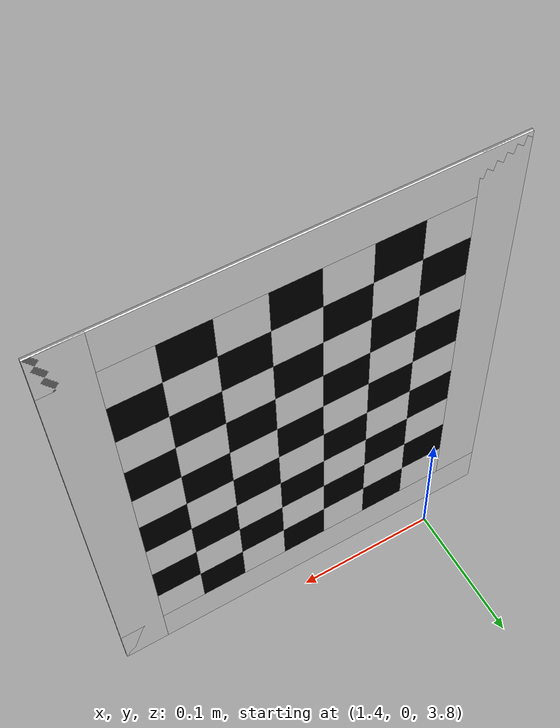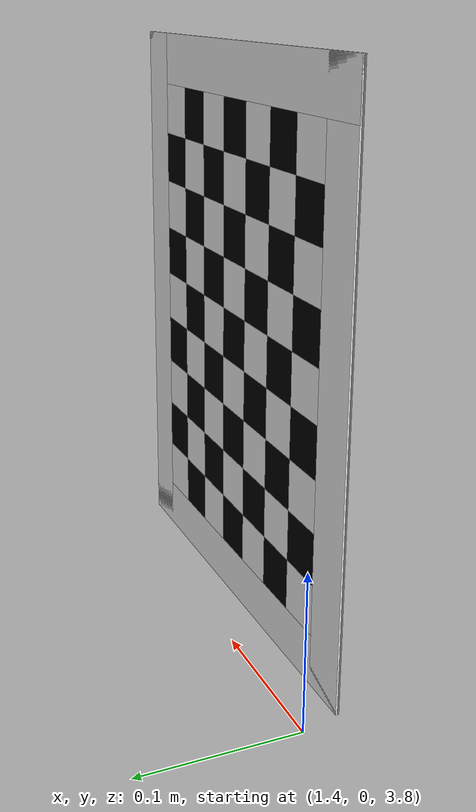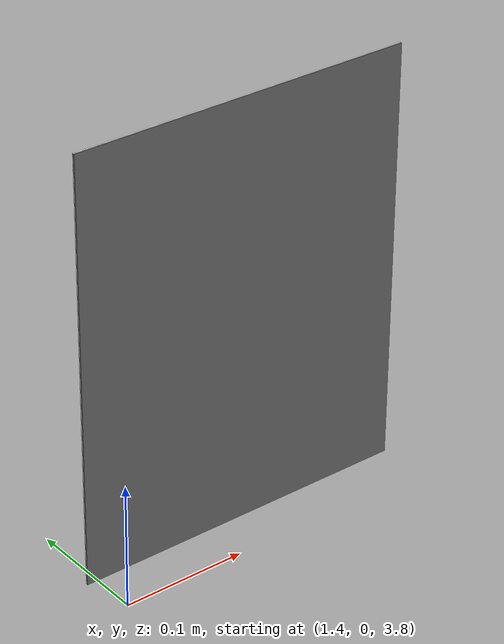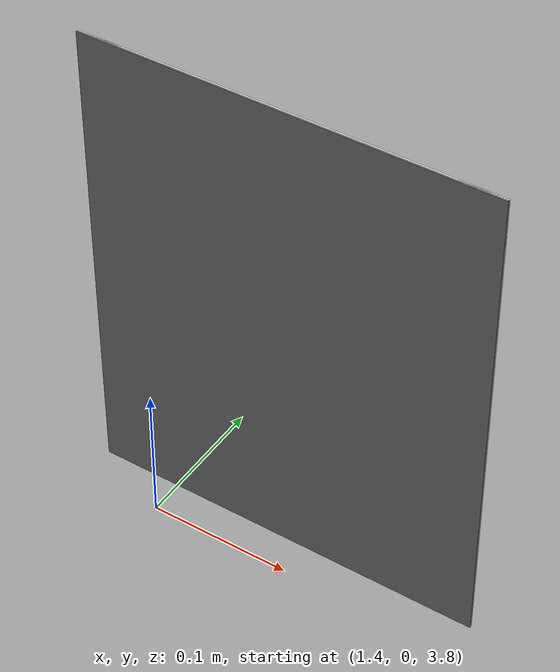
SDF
<sdf version="1.6">
 <world name="default">
  <physics type="ode">
   <ode>
    <solver><type>quick</type><iters>100</iters><sor>1.0</sor></solver>
    <constraints>
     <cfm>0.0</cfm>
     <erp>0.9</erp>
     <contact_max_correcting_vel>0.1</contact_max_correcting_vel>
     <contact_surface_layer>0.0</contact_surface_layer>
    </constraints>
   </ode>
   <max_step_size>0.001</max_step_size>
   <real_time_factor>1</real_time_factor>
   <real_time_update_rate>1000</real_time_update_rate>
  </physics>
  <include><uri>model://sun</uri></include>
  <model name="ground_plane">
   <static>true</static>
   <link name="link">
    <collision name="collision">
     <geometry><plane><normal>0 0 1</normal><size>5000 5000</size></plane></geometry>
     <surface><friction><ode><mu>10</mu><mu2>10</mu2></ode></friction></surface>
    </collision>
    <visual name="runway">
     <pose>000 0 0.005 0 0 0.1</pose>
     <cast_shadows>false</cast_shadows>
     <geometry><plane><normal>0 0 1</normal><size>1829 45</size></plane></geometry>
     <material>
      <script><uri>file://media/materials/scripts/gazebo.material</uri><name>Gazebo/Runway</name></script>
     </material>
    </visual>
    <visual name="grass">
     <pose>0 0 -0.1 0 0 0</pose>
     <cast_shadows>false</cast_shadows>
     <geometry><plane><normal>0 0 1</normal><size>5000 5000</size></plane></geometry>
     <material>
      <script><uri>file://media/materials/scripts/gazebo.material</uri><name>Gazebo/Grass</name></script>
     </material>
    </visual>
   </link>
  </model>
  <model name="calibration_board">
   <pose>1.5 0 1 0 0 0</pose>
   <static>1</static>
   <include><uri>model://calibration_board</uri><pose>0 0 3 1.57 1.57 0</pose></include>
  </model>
  <mode name="box1"><pose>15 0 0 0 0 0</pose><include><uri>model://box</uri></include></mode>
 </world>
</sdf>

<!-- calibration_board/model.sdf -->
<sdf version="1.6">
    <model name="calibration_board">
        <static>true</static>
        <link name="base_link">
            <!-- Back of the landmark not to mess with small Z offset -->
            <visual name="back">
                <pose>0 0 0.0015 0 0 0</pose>
                <geometry>
                    <box>
                        <size>0.33 0.27 0.001</size>
                    </box>
                </geometry>
                <material>
                    <ambient>0.5 0.5 0.5 1</ambient>
                    <specular>0.5 0.5 0.5 1</specular>
                    <diffuse>0.5 0.5 0.5 1</diffuse>
                </material>
            </visual>
            <inertial>
                <mass>0.1</mass>
            </inertial>
            <!-- Borders -->
            <visual name="border0">
                <pose>0.15 0 0.0005 0 0 0</pose>
                <geometry>
                    <box>
                        <size>0.03 0.27 0.001</size>
                    </box>
                </geometry>
                <material>
                    <ambient>1 1 1 1</ambient>
                    <specular>1 1 1 1</specular>
                    <diffuse>1 1 1 1</diffuse>
                </material>
            </visual>
            <visual name="border1">
                <pose>-0.15 0 0.0005 0 0 0</pose>
                <geometry>
                    <box>
                        <size>0.03 0.27 0.001</size>
                    </box>
                </geometry>
                <material>
                    <ambient>1 1 1 1</ambient>
                    <specular>1 1 1 1</specular>
                    <diffuse>1 1 1 1</diffuse>
                </material>
            </visual>
            <visual name="border2">
                <pose>0 0.12 0.0005 0 0 0</pose>
                <geometry>
                    <box>
                        <size>0.33 0.03 0.001</size>
                    </box>
                </geometry>
                <material>
                    <ambient>1 1 1 1</ambient>
                    <specular>1 1 1 1</specular>
                    <diffuse>1 1 1 1</diffuse>
                </material>
            </visual>
            <visual name="border3">
                <pose>0 -0.12 0.0005 0 0 0</pose>
                <geometry>
                    <box>
                        <size>0.33 0.03 0.001</size>
                    </box>
                </geometry>
                <material>
                    <ambient>1 1 1 1</ambient>
                    <specular>1 1 1 1</specular>
                    <diffuse>1 1 1 1</diffuse>
                </material>
            </visual>
            <visual name="86">
                <pose>0.12 0.09 0.0005 0 0 0</pose>
                <geometry>
                    <box>
                        <size>0.03 0.03 0.001</size>
                    </box>
                </geometry>
                <material>
                    <ambient>1 1 1 1</ambient>
                    <specular>1 1 1 1</specular>
                    <diffuse>1 1 1 1</diffuse>
                </material>
            </visual>
            <visual name="85">
                <pose>0.12 0.06 0.0005 0 0 0</pose>
                <geometry>
                    <box>
                        <size>0.03 0.03 0.001</size>
                    </box>
                </geometry>
                <material>
                    <ambient>0 0 0 1</ambient>
                    <specular>0 0 0 1</specular>
                    <diffuse>0 0 0 1</diffuse>
                </material>
            </visual>
            <visual name="84">
                <pose>0.12 0.03 0.0005 0 0 0</pose>
                <geometry>
                    <box>
                        <size>0.03 0.03 0.001</size>
                    </box>
                </geometry>
                <material>
                    <ambient>1 1 1 1</ambient>
                    <specular>1 1 1 1</specular>
                    <diffuse>1 1 1 1</diffuse>
                </material>
            </visual>
            <visual name="83">
                <pose>0.12 0.0 0.0005 0 0 0</pose>
                <geometry>
                    <box>
                        <size>0.03 0.03 0.001</size>
                    </box>
                </geometry>
                <material>
                    <ambient>0 0 0 1</ambient>
                    <specular>0 0 0 1</specular>
                    <diffuse>0 0 0 1</diffuse>
                </material>
            </visual>
            <visual name="82">
                <pose>0.12 -0.03 0.0005 0 0 0</pose>
                <geometry>
                    <box>
                        <size>0.03 0.03 0.001</size>
                    </box>
                </geometry>
                <material>
                    <ambient>1 1 1 1</ambient>
                    <specular>1 1 1 1</specular>
                    <diffuse>1 1 1 1</diffuse>
                </material>
            </visual>
            <visual name="81">
                <pose>0.12 -0.06 0.0005 0 0 0</pose>
                <geometry>
                    <box>
                        <size>0.03 0.03 0.001</size>
                    </box>
                </geometry>
                <material>
                    <ambient>0 0 0 1</ambient>
                    <specular>0 0 0 1</specular>
                    <diffuse>0 0 0 1</diffuse>
                </material>
            </visual>
            <visual name="80">
                <pose>0.12 -0.09 0.0005 0 0 0</pose>
                <geometry>
                    <box>
                        <size>0.03 0.03 0.001</size>
                    </box>
                </geometry>
                <material>
                    <ambient>1 1 1 1</ambient>
                    <specular>1 1 1 1</specular>
                    <diffuse>1 1 1 1</diffuse>
                </material>
            </visual>
            <visual name="76">
                <pose>0.09 0.09 0.0005 0 0 0</pose>
                <geometry>
                    <box>
                        <size>0.03 0.03 0.001</size>
                    </box>
                </geometry>
                <material>
                    <ambient>0 0 0 1</ambient>
                    <specular>0 0 0 1</specular>
                    <diffuse>0 0 0 1</diffuse>
                </material>
            </visual>
            <visual name="75">
                <pose>0.09 0.06 0.0005 0 0 0</pose>
                <geometry>
                    <box>
                        <size>0.03 0.03 0.001</size>
                    </box>
                </geometry>
                <material>
                    <ambient>1 1 1 1</ambient>
                    <specular>1 1 1 1</specular>
                    <diffuse>1 1 1 1</diffuse>
                </material>
            </visual>
            <visual name="74">
                <pose>0.09 0.03 0.0005 0 0 0</pose>
                <geometry>
                    <box>
                        <size>0.03 0.03 0.001</size>
                    </box>
                </geometry>
                <material>
                    <ambient>0 0 0 1</ambient>
                    <specular>0 0 0 1</specular>
                    <diffuse>0 0 0 1</diffuse>
                </material>
            </visual>
            <visual name="73">
                <pose>0.09 0.0 0.0005 0 0 0</pose>
                <geometry>
                    <box>
                        <size>0.03 0.03 0.001</size>
                    </box>
                </geometry>
                <material>
                    <ambient>1 1 1 1</ambient>
                    <specular>1 1 1 1</specular>
                    <diffuse>1 1 1 1</diffuse>
                </material>
            </visual>
            <visual name="72">
                <pose>0.09 -0.03 0.0005 0 0 0</pose>
                <geometry>
                    <box>
                        <size>0.03 0.03 0.001</size>
                    </box>
                </geometry>
                <material>
                    <ambient>0 0 0 1</ambient>
                    <specular>0 0 0 1</specular>
                    <diffuse>0 0 0 1</diffuse>
                </material>
            </visual>
            <visual name="71">
                <pose>0.09 -0.06 0.0005 0 0 0</pose>
                <geometry>
                    <box>
                        <size>0.03 0.03 0.001</size>
                    </box>
                </geometry>
                <material>
                    <ambient>1 1 1 1</ambient>
                    <specular>1 1 1 1</specular>
                    <diffuse>1 1 1 1</diffuse>
                </material>
            </visual>
            <visual name="70">
                <pose>0.09 -0.09 0.0005 0 0 0</pose>
                <geometry>
                    <box>
                        <size>0.03 0.03 0.001</size>
                    </box>
                </geometry>
                <material>
                    <ambient>0 0 0 1</ambient>
                    <specular>0 0 0 1</specular>
                    <diffuse>0 0 0 1</diffuse>
                </material>
            </visual>
            <visual name="66">
                <pose>0.06 0.09 0.0005 0 0 0</pose>
                <geometry>
                    <box>
                        <size>0.03 0.03 0.001</size>
                    </box>
                </geometry>
                <material>
                    <ambient>1 1 1 1</ambient>
                    <specular>1 1 1 1</specular>
                    <diffuse>1 1 1 1</diffuse>
                </material>
            </visual>
            <visual name="65">
                <pose>0.06 0.06 0.0005 0 0 0</pose>
                <geometry>
                    <box>
                        <size>0.03 0.03 0.001</size>
                    </box>
                </geometry>
                <material>
                    <ambient>0 0 0 1</ambient>
                    <specular>0 0 0 1</specular>
                    <diffuse>0 0 0 1</diffuse>
                </material>
            </visual>
            <visual name="64">
                <pose>0.06 0.03 0.0005 0 0 0</pose>
                <geometry>
                    <box>
                        <size>0.03 0.03 0.001</size>
                    </box>
                </geometry>
                <material>
                    <ambient>1 1 1 1</ambient>
                    <specular>1 1 1 1</specular>
                    <diffuse>1 1 1 1</diffuse>
                </material>
            </visual>
            <visual name="63">
                <pose>0.06 0.0 0.0005 0 0 0</pose>
                <geometry>
                    <box>
                        <size>0.03 0.03 0.001</size>
                    </box>
                </geometry>
                <material>
                    <ambient>0 0 0 1</ambient>
                    <specular>0 0 0 1</specular>
                    <diffuse>0 0 0 1</diffuse>
                </material>
            </visual>
            <visual name="62">
                <pose>0.06 -0.03 0.0005 0 0 0</pose>
                <geometry>
                    <box>
                        <size>0.03 0.03 0.001</size>
                    </box>
                </geometry>
                <material>
                    <ambient>1 1 1 1</ambient>
                    <specular>1 1 1 1</specular>
                    <diffuse>1 1 1 1</diffuse>
                </material>
            </visual>
            <visual name="61">
                <pose>0.06 -0.06 0.0005 0 0 0</pose>
                <geometry>
                    <box>
                        <size>0.03 0.03 0.001</size>
                    </box>
                </geometry>
                <material>
                    <ambient>0 0 0 1</ambient>
                    <specular>0 0 0 1</specular>
                    <diffuse>0 0 0 1</diffuse>
                </material>
            </visual>
            <visual name="60">
                <pose>0.06 -0.09 0.0005 0 0 0</pose>
                <geometry>
                    <box>
                        <size>0.03 0.03 0.001</size>
                    </box>
                </geometry>
                <material>
                    <ambient>1 1 1 1</ambient>
                    <specular>1 1 1 1</specular>
                    <diffuse>1 1 1 1</diffuse>
                </material>
            </visual>
            <visual name="56">
                <pose>0.03 0.09 0.0005 0 0 0</pose>
                <geometry>
                    <box>
                        <size>0.03 0.03 0.001</size>
                    </box>
                </geometry>
                <material>
                    <ambient>0 0 0 1</ambient>
                    <specular>0 0 0 1</specular>
                    <diffuse>0 0 0 1</diffuse>
                </material>
            </visual>
            <visual name="55">
                <pose>0.03 0.06 0.0005 0 0 0</pose>
                <geometry>
                    <box>
                        <size>0.03 0.03 0.001</size>
                    </box>
                </geometry>
                <material>
                    <ambient>1 1 1 1</ambient>
                    <specular>1 1 1 1</specular>
                    <diffuse>1 1 1 1</diffuse>
                </material>
            </visual>
            <visual name="54">
                <pose>0.03 0.03 0.0005 0 0 0</pose>
                <geometry>
                    <box>
                        <size>0.03 0.03 0.001</size>
                    </box>
                </geometry>
                <material>
                    <ambient>0 0 0 1</ambient>
                    <specular>0 0 0 1</specular>
                    <diffuse>0 0 0 1</diffuse>
                </material>
            </visual>
            <visual name="53">
                <pose>0.03 0.0 0.0005 0 0 0</pose>
                <geometry>
                    <box>
                        <size>0.03 0.03 0.001</size>
                    </box>
                </geometry>
                <material>
                    <ambient>1 1 1 1</ambient>
                    <specular>1 1 1 1</specular>
                    <diffuse>1 1 1 1</diffuse>
                </material>
            </visual>
            <visual name="52">
                <pose>0.03 -0.03 0.0005 0 0 0</pose>
                <geometry>
                    <box>
                        <size>0.03 0.03 0.001</size>
                    </box>
                </geometry>
                <material>
                    <ambient>0 0 0 1</ambient>
                    <specular>0 0 0 1</specular>
                    <diffuse>0 0 0 1</diffuse>
                </material>
            </visual>
            <visual name="51">
                <pose>0.03 -0.06 0.0005 0 0 0</pose>
                <geometry>
                    <box>
                        <size>0.03 0.03 0.001</size>
                    </box>
                </geometry>
                <material>
                    <ambient>1 1 1 1</ambient>
                    <specular>1 1 1 1</specular>
                    <diffuse>1 1 1 1</diffuse>
                </material>
            </visual>
            <visual name="50">
                <pose>0.03 -0.09 0.0005 0 0 0</pose>
                <geometry>
                    <box>
                        <size>0.03 0.03 0.001</size>
                    </box>
                </geometry>
                <material>
                    <ambient>0 0 0 1</ambient>
                    <specular>0 0 0 1</specular>
                    <diffuse>0 0 0 1</diffuse>
                </material>
            </visual>
            <visual name="46">
                <pose>0.0 0.09 0.0005 0 0 0</pose>
                <geometry>
                    <box>
                        <size>0.03 0.03 0.001</size>
                    </box>
                </geometry>
                <material>
                    <ambient>1 1 1 1</ambient>
                    <specular>1 1 1 1</specular>
                    <diffuse>1 1 1 1</diffuse>
                </material>
            </visual>
            <visual name="45">
                <pose>0.0 0.06 0.0005 0 0 0</pose>
                <geometry>
                    <box>
                        <size>0.03 0.03 0.001</size>
                    </box>
                </geometry>
                <material>
                    <ambient>0 0 0 1</ambient>
                    <specular>0 0 0 1</specular>
                    <diffuse>0 0 0 1</diffuse>
                </material>
            </visual>
            <visual name="44">
                <pose>0.0 0.03 0.0005 0 0 0</pose>
                <geometry>
                    <box>
                        <size>0.03 0.03 0.001</size>
                    </box>
                </geometry>
                <material>
                    <ambient>1 1 1 1</ambient>
                    <specular>1 1 1 1</specular>
                    <diffuse>1 1 1 1</diffuse>
                </material>
            </visual>
            <visual name="43">
                <pose>0.0 0.0 0.0005 0 0 0</pose>
                <geometry>
                    <box>
                        <size>0.03 0.03 0.001</size>
                    </box>
                </geometry>
                <material>
                    <ambient>0 0 0 1</ambient>
                    <specular>0 0 0 1</specular>
                    <diffuse>0 0 0 1</diffuse>
                </material>
            </visual>
            <visual name="42">
                <pose>0.0 -0.03 0.0005 0 0 0</pose>
                <geometry>
                    <box>
                        <size>0.03 0.03 0.001</size>
                    </box>
                </geometry>
                <material>
                    <ambient>1 1 1 1</ambient>
                    <specular>1 1 1 1</specular>
                    <diffuse>1 1 1 1</diffuse>
                </material>
            </visual>
            <visual name="41">
                <pose>0.0 -0.06 0.0005 0 0 0</pose>
                <geometry>
                    <box>
                        <size>0.03 0.03 0.001</size>
                    </box>
                </geometry>
                <material>
                    <ambient>0 0 0 1</ambient>
                    <specular>0 0 0 1</specular>
                    <diffuse>0 0 0 1</diffuse>
                </material>
            </visual>
            <visual name="40">
                <pose>0.0 -0.09 0.0005 0 0 0</pose>
                <geometry>
                    <box>
                        <size>0.03 0.03 0.001</size>
                    </box>
                </geometry>
                <material>
                    <ambient>1 1 1 1</ambient>
                    <specular>1 1 1 1</specular>
                    <diffuse>1 1 1 1</diffuse>
                </material>
            </visual>
            <visual name="36">
                <pose>-0.03 0.09 0.0005 0 0 0</pose>
                <geometry>
                    <box>
                        <size>0.03 0.03 0.001</size>
                    </box>
                </geometry>
                <material>
                    <ambient>0 0 0 1</ambient>
                    <specular>0 0 0 1</specular>
                    <diffuse>0 0 0 1</diffuse>
                </material>
            </visual>
            <visual name="35">
                <pose>-0.03 0.06 0.0005 0 0 0</pose>
                <geometry>
                    <box>
                        <size>0.03 0.03 0.001</size>
                    </box>
                </geometry>
                <material>
                    <ambient>1 1 1 1</ambient>
                    <specular>1 1 1 1</specular>
                    <diffuse>1 1 1 1</diffuse>
                </material>
            </visual>
            <visual name="34">
                <pose>-0.03 0.03 0.0005 0 0 0</pose>
                <geometry>
                    <box>
                        <size>0.03 0.03 0.001</size>
                    </box>
                </geometry>
                <material>
                    <ambient>0 0 0 1</ambient>
                    <specular>0 0 0 1</specular>
                    <diffuse>0 0 0 1</diffuse>
                </material>
            </visual>
            <visual name="33">
                <pose>-0.03 0.0 0.0005 0 0 0</pose>
                <geometry>
                    <box>
                        <size>0.03 0.03 0.001</size>
                    </box>
                </geometry>
                <material>
                    <ambient>1 1 1 1</ambient>
                    <specular>1 1 1 1</specular>
                    <diffuse>1 1 1 1</diffuse>
                </material>
            </visual>
            <visual name="32">
                <pose>-0.03 -0.03 0.0005 0 0 0</pose>
                <geometry>
                    <box>
                        <size>0.03 0.03 0.001</size>
                    </box>
                </geometry>
                <material>
                    <ambient>0 0 0 1</ambient>
                    <specular>0 0 0 1</specular>
                    <diffuse>0 0 0 1</diffuse>
                </material>
            </visual>
            <visual name="31">
                <pose>-0.03 -0.06 0.0005 0 0 0</pose>
                <geometry>
                    <box>
                        <size>0.03 0.03 0.001</size>
                    </box>
                </geometry>
                <material>
                    <ambient>1 1 1 1</ambient>
                    <specular>1 1 1 1</specular>
                    <diffuse>1 1 1 1</diffuse>
                </material>
            </visual>
            <visual name="30">
                <pose>-0.03 -0.09 0.0005 0 0 0</pose>
                <geometry>
                    <box>
                        <size>0.03 0.03 0.001</size>
                    </box>
                </geometry>
                <material>
                    <ambient>0 0 0 1</ambient>
                    <specular>0 0 0 1</specular>
                    <diffuse>0 0 0 1</diffuse>
                </material>
            </visual>
            <visual name="26">
                <pose>-0.06 0.09 0.0005 0 0 0</pose>
                <geometry>
                    <box>
                        <size>0.03 0.03 0.001</size>
                    </box>
                </geometry>
                <material>
                    <ambient>1 1 1 1</ambient>
                    <specular>1 1 1 1</specular>
                    <diffuse>1 1 1 1</diffuse>
                </material>
            </visual>
            <visual name="25">
                <pose>-0.06 0.06 0.0005 0 0 0</pose>
                <geometry>
                    <box>
                        <size>0.03 0.03 0.001</size>
                    </box>
                </geometry>
                <material>
                    <ambient>0 0 0 1</ambient>
                    <specular>0 0 0 1</specular>
                    <diffuse>0 0 0 1</diffuse>
                </material>
            </visual>
            <visual name="24">
                <pose>-0.06 0.03 0.0005 0 0 0</pose>
                <geometry>
                    <box>
                        <size>0.03 0.03 0.001</size>
                    </box>
                </geometry>
                <material>
                    <ambient>1 1 1 1</ambient>
                    <specular>1 1 1 1</specular>
                    <diffuse>1 1 1 1</diffuse>
                </material>
            </visual>
            <visual name="23">
                <pose>-0.06 0.0 0.0005 0 0 0</pose>
                <geometry>
                    <box>
                        <size>0.03 0.03 0.001</size>
                    </box>
                </geometry>
                <material>
                    <ambient>0 0 0 1</ambient>
                    <specular>0 0 0 1</specular>
                    <diffuse>0 0 0 1</diffuse>
                </material>
            </visual>
            <visual name="22">
                <pose>-0.06 -0.03 0.0005 0 0 0</pose>
                <geometry>
                    <box>
                        <size>0.03 0.03 0.001</size>
                    </box>
                </geometry>
                <material>
                    <ambient>1 1 1 1</ambient>
                    <specular>1 1 1 1</specular>
                    <diffuse>1 1 1 1</diffuse>
                </material>
            </visual>
            <visual name="21">
                <pose>-0.06 -0.06 0.0005 0 0 0</pose>
                <geometry>
                    <box>
                        <size>0.03 0.03 0.001</size>
                    </box>
                </geometry>
                <material>
                    <ambient>0 0 0 1</ambient>
                    <specular>0 0 0 1</specular>
                    <diffuse>0 0 0 1</diffuse>
                </material>
            </visual>
            <visual name="20">
                <pose>-0.06 -0.09 0.0005 0 0 0</pose>
                <geometry>
                    <box>
                        <size>0.03 0.03 0.001</size>
                    </box>
                </geometry>
                <material>
                    <ambient>1 1 1 1</ambient>
                    <specular>1 1 1 1</specular>
                    <diffuse>1 1 1 1</diffuse>
                </material>
            </visual>
            <visual name="16">
                <pose>-0.09 0.09 0.0005 0 0 0</pose>
                <geometry>
                    <box>
                        <size>0.03 0.03 0.001</size>
                    </box>
                </geometry>
                <material>
                    <ambient>0 0 0 1</ambient>
                    <specular>0 0 0 1</specular>
                    <diffuse>0 0 0 1</diffuse>
                </material>
            </visual>
            <visual name="15">
                <pose>-0.09 0.06 0.0005 0 0 0</pose>
                <geometry>
                    <box>
                        <size>0.03 0.03 0.001</size>
                    </box>
                </geometry>
                <material>
                    <ambient>1 1 1 1</ambient>
                    <specular>1 1 1 1</specular>
                    <diffuse>1 1 1 1</diffuse>
                </material>
            </visual>
            <visual name="14">
                <pose>-0.09 0.03 0.0005 0 0 0</pose>
                <geometry>
                    <box>
                        <size>0.03 0.03 0.001</size>
                    </box>
                </geometry>
                <material>
                    <ambient>0 0 0 1</ambient>
                    <specular>0 0 0 1</specular>
                    <diffuse>0 0 0 1</diffuse>
                </material>
            </visual>
            <visual name="13">
                <pose>-0.09 0.0 0.0005 0 0 0</pose>
                <geometry>
                    <box>
                        <size>0.03 0.03 0.001</size>
                    </box>
                </geometry>
                <material>
                    <ambient>1 1 1 1</ambient>
                    <specular>1 1 1 1</specular>
                    <diffuse>1 1 1 1</diffuse>
                </material>
            </visual>
            <visual name="12">
                <pose>-0.09 -0.03 0.0005 0 0 0</pose>
                <geometry>
                    <box>
                        <size>0.03 0.03 0.001</size>
                    </box>
                </geometry>
                <material>
                    <ambient>0 0 0 1</ambient>
                    <specular>0 0 0 1</specular>
                    <diffuse>0 0 0 1</diffuse>
                </material>
            </visual>
            <visual name="11">
                <pose>-0.09 -0.06 0.0005 0 0 0</pose>
                <geometry>
                    <box>
                        <size>0.03 0.03 0.001</size>
                    </box>
                </geometry>
                <material>
                    <ambient>1 1 1 1</ambient>
                    <specular>1 1 1 1</specular>
                    <diffuse>1 1 1 1</diffuse>
                </material>
            </visual>
            <visual name="10">
                <pose>-0.09 -0.09 0.0005 0 0 0</pose>
                <geometry>
                    <box>
                        <size>0.03 0.03 0.001</size>
                    </box>
                </geometry>
                <material>
                    <ambient>0 0 0 1</ambient>
                    <specular>0 0 0 1</specular>
                    <diffuse>0 0 0 1</diffuse>
                </material>
            </visual>
            <visual name="06">
                <pose>-0.12 0.09 0.0005 0 0 0</pose>
                <geometry>
                    <box>
                        <size>0.03 0.03 0.001</size>
                    </box>
                </geometry>
                <material>
                    <ambient>1 1 1 1</ambient>
                    <specular>1 1 1 1</specular>
                    <diffuse>1 1 1 1</diffuse>
                </material>
            </visual>
            <visual name="05">
                <pose>-0.12 0.06 0.0005 0 0 0</pose>
                <geometry>
                    <box>
                        <size>0.03 0.03 0.001</size>
                    </box>
                </geometry>
                <material>
                    <ambient>0 0 0 1</ambient>
                    <specular>0 0 0 1</specular>
                    <diffuse>0 0 0 1</diffuse>
                </material>
            </visual>
            <visual name="04">
                <pose>-0.12 0.03 0.0005 0 0 0</pose>
                <geometry>
                    <box>
                        <size>0.03 0.03 0.001</size>
                    </box>
                </geometry>
                <material>
                    <ambient>1 1 1 1</ambient>
                    <specular>1 1 1 1</specular>
                    <diffuse>1 1 1 1</diffuse>
                </material>
            </visual>
            <visual name="03">
                <pose>-0.12 0.0 0.0005 0 0 0</pose>
                <geometry>
                    <box>
                        <size>0.03 0.03 0.001</size>
                    </box>
                </geometry>
                <material>
                    <ambient>0 0 0 1</ambient>
                    <specular>0 0 0 1</specular>
                    <diffuse>0 0 0 1</diffuse>
                </material>
            </visual>
            <visual name="02">
                <pose>-0.12 -0.03 0.0005 0 0 0</pose>
                <geometry>
                    <box>
                        <size>0.03 0.03 0.001</size>
                    </box>
                </geometry>
                <material>
                    <ambient>1 1 1 1</ambient>
                    <specular>1 1 1 1</specular>
                    <diffuse>1 1 1 1</diffuse>
                </material>
            </visual>
            <visual name="01">
                <pose>-0.12 -0.06 0.0005 0 0 0</pose>
                <geometry>
                    <box>
                        <size>0.03 0.03 0.001</size>
                    </box>
                </geometry>
                <material>
                    <ambient>0 0 0 1</ambient>
                    <specular>0 0 0 1</specular>
                    <diffuse>0 0 0 1</diffuse>
                </material>
            </visual>
            <visual name="00">
                <pose>-0.12 -0.09 0.0005 0 0 0</pose>
                <geometry>
                    <box>
                        <size>0.03 0.03 0.001</size>
                    </box>
                </geometry>
                <material>
                    <ambient>1 1 1 1</ambient>
                    <specular>1 1 1 1</specular>
                    <diffuse>1 1 1 1</diffuse>
                </material>
            </visual>
        </link>
    </model>

</sdf>
